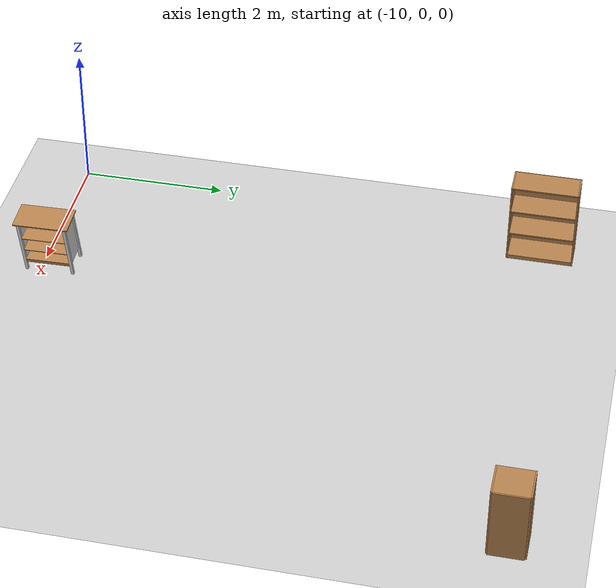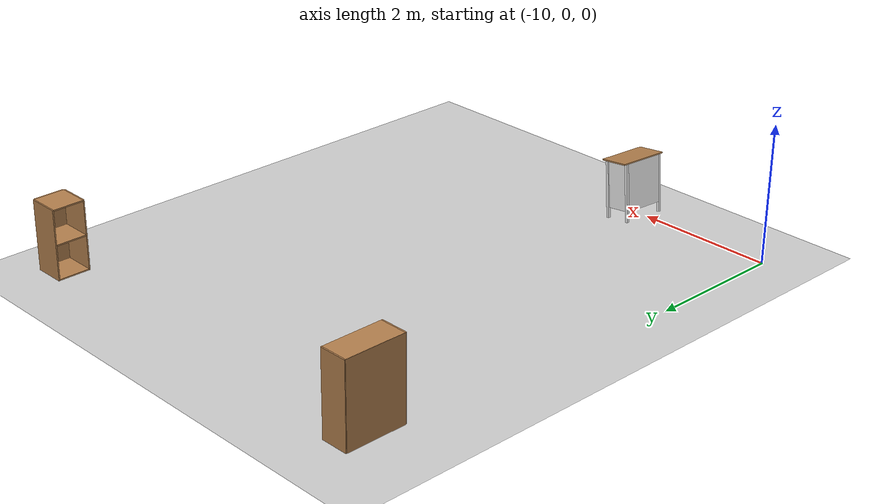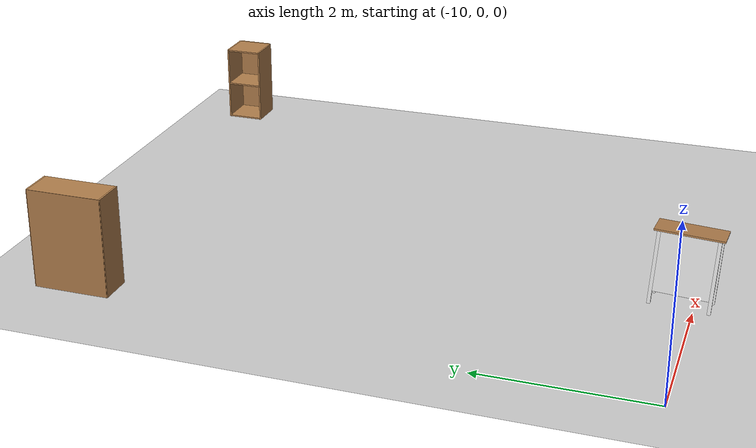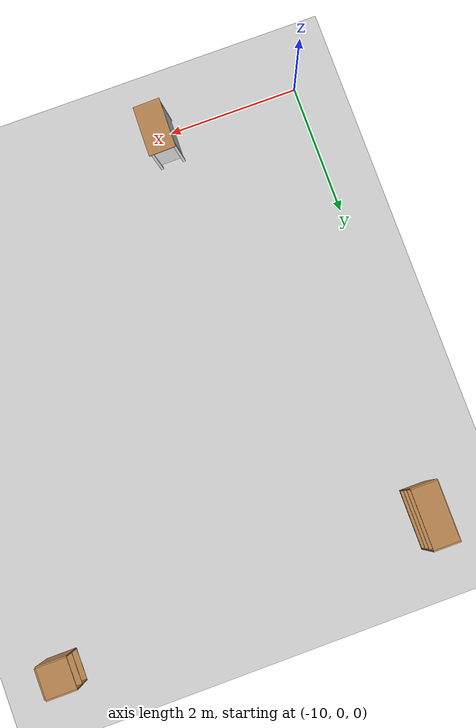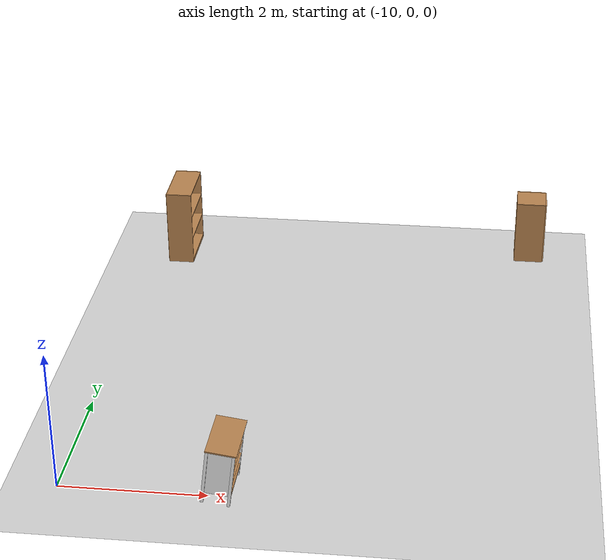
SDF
<sdf version="1.4">
 <world name="default">
  <light name="sun" type="directional">
   <pose>0 0 10 0 -0 0</pose>
   <diffuse>0.8 0.8 0.8 1</diffuse>
   <specular>0.2 0.2 0.2 1</specular>
   <attenuation>
    <range>1000</range>
    <constant>0.9</constant>
    <linear>0.01</linear>
    <quadratic>0.001</quadratic>
   </attenuation>
   <direction>-0.5 0.1 -0.9</direction>
  </light>
  <model name="ground_plane">
   <static>1</static>
   <link name="link">
    <collision name="collision">
     <geometry><plane><normal>0 0 1</normal><size>100 100</size></plane></geometry>
     <surface><friction><ode><mu>100</mu><mu2>50</mu2></ode></friction></surface>
    </collision>
    <visual name="visual">
     <cast_shadows>0</cast_shadows>
     <geometry><plane><normal>0 0 1</normal><size>100 100</size></plane></geometry>
     <material>
      <script><uri>file://media/materials/scripts/gazebo.material</uri><name>Gazebo/Grey</name></script>
     </material>
    </visual>
    <velocity_decay><linear>0</linear><angular>0</angular></velocity_decay>
   </link>
  </model>
  <physics type="ode">
   <max_step_size>0.001</max_step_size>
   <real_time_factor>1</real_time_factor>
   <real_time_update_rate>1000</real_time_update_rate>
   <gravity>0 0 -9.8</gravity>
  </physics>
  <scene><ambient>0.4 0.4 0.4 1</ambient><background>0.7 0.7 0.7 1</background><shadows>1</shadows></scene>
  <spherical_coordinates>
   <surface_model>EARTH_WGS84</surface_model>
   <latitude_deg>0</latitude_deg>
   <longitude_deg>0</longitude_deg>
   <elevation>0</elevation>
   <heading_deg>0</heading_deg>
  </spherical_coordinates>
  <model name="cabinet2">
   <link name="dummy_link">
    <inertial>
     <pose>0 0.02125 0.429167 0 -0 0</pose>
     <mass>60</mass>
     <inertia>
      <ixx>3.11074</ixx>
      <ixy>0</ixy>
      <ixz>0</ixz>
      <iyy>5.53421</iyy>
      <iyz>-0.0689375</iyz>
      <izz>3.98053</izz>
     </inertia>
    </inertial>
    <collision name="dummy_link_collision"><geometry><box><size>0 0 0</size></box></geometry></collision>
    <collision name="dummy_link_collision_cabinet_back">
     <pose>0 0.195 0.495 0 -0 0</pose>
     <geometry><box><size>0.62 0.02 0.69</size></box></geometry>
    </collision>
    <collision name="dummy_link_collision_cabinet_back_left">
     <pose>-0.33 0.185 0.42 0 -0 0</pose>
     <geometry><box><size>0.04 0.04 0.84</size></box></geometry>
    </collision>
    <collision name="dummy_link_collision_cabinet_back_right">
     <pose>0.33 0.185 0.42 0 -0 0</pose>
     <geometry><box><size>0.04 0.04 0.84</size></box></geometry>
    </collision>
    <collision name="dummy_link_collision_cabinet_bottom">
     <pose>0 0 0.175 0 -0 0</pose>
     <geometry><box><size>0.62 0.37 0.05</size></box></geometry>
    </collision>
    <collision name="dummy_link_collision_cabinet_front_left">
     <pose>-0.33 -0.165 0.42 0 -0 0</pose>
     <geometry><box><size>0.04 0.04 0.84</size></box></geometry>
    </collision>
    <collision name="dummy_link_collision_cabinet_front_right">
     <pose>0.33 -0.165 0.42 0 -0 0</pose>
     <geometry><box><size>0.04 0.04 0.84</size></box></geometry>
    </collision>
    <collision name="dummy_link_collision_cabinet_left">
     <pose>-0.32 0.01 0.495 0 -0 0</pose>
     <geometry><box><size>0.02 0.31 0.69</size></box></geometry>
    </collision>
    <collision name="dummy_link_collision_cabinet_middle1">
     <pose>0 0 0.585 0 -0 0</pose>
     <geometry><box><size>0.62 0.37 0.01</size></box></geometry>
    </collision>
    <collision name="dummy_link_collision_cabinet_middle2">
     <pose>0 0 0.375 0 -0 0</pose>
     <geometry><box><size>0.62 0.37 0.01</size></box></geometry>
    </collision>
    <collision name="dummy_link_collision_cabinet_right">
     <pose>0.32 0.01 0.495 0 -0 0</pose>
     <geometry><box><size>0.02 0.31 0.69</size></box></geometry>
    </collision>
    <collision name="dummy_link_collision_cabinet_top">
     <pose>0 0 0.85 0 -0 0</pose>
     <geometry><box><size>0.78 0.41 0.02</size></box></geometry>
    </collision>
    <visual name="dummy_link_visual"><geometry><box><size>0 0 0</size></box></geometry></visual>
    <visual name="dummy_link_visual_cabinet_back">
     <pose>0 0.195 0.495 0 -0 0</pose>
     <geometry><box><size>0.62 0.02 0.69</size></box></geometry>
     <material><script><name>IPA/Cabinet_White</name><uri>__default__</uri></script></material>
    </visual>
    <visual name="dummy_link_visual_cabinet_back_left">
     <pose>-0.33 0.185 0.42 0 -0 0</pose>
     <geometry><box><size>0.04 0.04 0.84</size></box></geometry>
     <material><script><name>IPA/Cabinet_White</name><uri>__default__</uri></script></material>
     <material><script><name>IPA/Cabinet_White</name><uri>__default__</uri></script></material>
    </visual>
    <visual name="dummy_link_visual_cabinet_back_right">
     <pose>0.33 0.185 0.42 0 -0 0</pose>
     <geometry><box><size>0.04 0.04 0.84</size></box></geometry>
     <material><script><name>IPA/Cabinet_White</name><uri>__default__</uri></script></material>
     <material><script><name>IPA/Cabinet_White</name><uri>__default__</uri></script></material>
    </visual>
    <visual name="dummy_link_visual_cabinet_bottom">
     <pose>0 0 0.175 0 -0 0</pose>
     <geometry><box><size>0.62 0.37 0.05</size></box></geometry>
     <material><script><name>IPA/Cabinet_Wood</name><uri>__default__</uri></script></material>
    </visual>
    <visual name="dummy_link_visual_cabinet_front_left">
     <pose>-0.33 -0.165 0.42 0 -0 0</pose>
     <geometry><box><size>0.04 0.04 0.84</size></box></geometry>
     <material><script><name>IPA/Cabinet_White</name><uri>__default__</uri></script></material>
    </visual>
    <visual name="dummy_link_visual_cabinet_front_right">
     <pose>0.33 -0.165 0.42 0 -0 0</pose>
     <geometry><box><size>0.04 0.04 0.84</size></box></geometry>
     <material><script><name>IPA/Cabinet_White</name><uri>__default__</uri></script></material>
    </visual>
    <visual name="dummy_link_visual_cabinet_left">
     <pose>-0.32 0.01 0.495 0 -0 0</pose>
     <geometry><box><size>0.02 0.31 0.69</size></box></geometry>
     <material><script><name>IPA/Cabinet_White</name><uri>__default__</uri></script></material>
    </visual>
    <visual name="dummy_link_visual_cabinet_middle1">
     <pose>0 0 0.585 0 -0 0</pose>
     <geometry><box><size>0.62 0.37 0.01</size></box></geometry>
     <material><script><name>IPA/Cabinet_Wood</name><uri>__default__</uri></script></material>
    </visual>
    <visual name="dummy_link_visual_cabinet_middle2">
     <pose>0 0 0.375 0 -0 0</pose>
     <geometry><box><size>0.62 0.37 0.01</size></box></geometry>
     <material><script><name>IPA/Cabinet_Wood</name><uri>__default__</uri></script></material>
    </visual>
    <visual name="dummy_link_visual_cabinet_right">
     <pose>0.32 0.01 0.495 0 -0 0</pose>
     <geometry><box><size>0.02 0.31 0.69</size></box></geometry>
     <material><script><name>IPA/Cabinet_White</name><uri>__default__</uri></script></material>
    </visual>
    <visual name="dummy_link_visual_cabinet_top">
     <pose>0 0 0.85 0 -0 0</pose>
     <geometry><box><size>0.78 0.41 0.02</size></box></geometry>
     <material><script><name>IPA/Cabinet_Wood</name><uri>__default__</uri></script></material>
    </visual>
    <velocity_decay><linear>0</linear><angular>0</angular></velocity_decay>
    <velocity_decay><linear>0</linear><angular>0</angular></velocity_decay>
    <velocity_decay><linear>0</linear><angular>0</angular></velocity_decay>
    <velocity_decay><linear>0</linear><angular>0</angular></velocity_decay>
    <velocity_decay><linear>0</linear><angular>0</angular></velocity_decay>
    <velocity_decay><linear>0</linear><angular>0</angular></velocity_decay>
    <velocity_decay><linear>0</linear><angular>0</angular></velocity_decay>
    <velocity_decay><linear>0</linear><angular>0</angular></velocity_decay>
    <velocity_decay><linear>0</linear><angular>0</angular></velocity_decay>
    <velocity_decay><linear>0</linear><angular>0</angular></velocity_decay>
    <velocity_decay><linear>0</linear><angular>0</angular></velocity_decay>
   </link>
   <pose>-7.8627 0.146233 0.038992 0.126868 -0.044608 1.54443</pose>
   <static>0</static>
  </model>
  <model name="bookshelf">
   <static>1</static>
   <link name="link">
    <inertial><mass>1</mass></inertial>
    <collision name="back">
     <pose>0 0.005 0.6 0 -0 0</pose>
     <geometry><box><size>0.9 0.01 1.2</size></box></geometry>
    </collision>
    <visual name="visual1">
     <pose>0 0.005 0.6 0 -0 0</pose>
     <geometry><box><size>0.9 0.01 1.2</size></box></geometry>
     <material>
      <script><uri>file://media/materials/scripts/gazebo.material</uri><name>Gazebo/Wood</name></script>
     </material>
    </visual>
    <collision name="left_side">
     <pose>0.45 -0.195 0.6 0 -0 0</pose>
     <geometry><box><size>0.02 0.4 1.2</size></box></geometry>
    </collision>
    <visual name="visual2">
     <pose>0.45 -0.195 0.6 0 -0 0</pose>
     <geometry><box><size>0.02 0.4 1.2</size></box></geometry>
     <material>
      <script><uri>file://media/materials/scripts/gazebo.material</uri><name>Gazebo/Wood</name></script>
     </material>
    </visual>
    <collision name="right_side">
     <pose>-0.45 -0.195 0.6 0 -0 0</pose>
     <geometry><box><size>0.02 0.4 1.2</size></box></geometry>
    </collision>
    <visual name="visual3">
     <pose>-0.45 -0.195 0.6 0 -0 0</pose>
     <geometry><box><size>0.02 0.4 1.2</size></box></geometry>
     <material>
      <script><uri>file://media/materials/scripts/gazebo.material</uri><name>Gazebo/Wood</name></script>
     </material>
    </visual>
    <collision name="bottom">
     <pose>0 -0.195 0.03 0 -0 0</pose>
     <geometry><box><size>0.88 0.4 0.06</size></box></geometry>
    </collision>
    <visual name="visual4">
     <pose>0 -0.195 0.03 0 -0 0</pose>
     <geometry><box><size>0.88 0.4 0.06</size></box></geometry>
     <material>
      <script><uri>file://media/materials/scripts/gazebo.material</uri><name>Gazebo/Wood</name></script>
     </material>
    </visual>
    <collision name="top">
     <pose>0 -0.195 1.19 0 -0 0</pose>
     <geometry><box><size>0.88 0.4 0.02</size></box></geometry>
    </collision>
    <visual name="visual5">
     <pose>0 -0.195 1.19 0 -0 0</pose>
     <geometry><box><size>0.88 0.4 0.02</size></box></geometry>
     <material>
      <script><uri>file://media/materials/scripts/gazebo.material</uri><name>Gazebo/Wood</name></script>
     </material>
    </visual>
    <collision name="low_shelf">
     <pose>0 -0.195 0.43 0 -0 0</pose>
     <geometry><box><size>0.88 0.4 0.02</size></box></geometry>
    </collision>
    <visual name="visual6">
     <pose>0 -0.195 0.43 0 -0 0</pose>
     <geometry><box><size>0.88 0.4 0.02</size></box></geometry>
     <material>
      <script><uri>file://media/materials/scripts/gazebo.material</uri><name>Gazebo/Wood</name></script>
     </material>
    </visual>
    <collision name="high_shelf">
     <pose>0 -0.195 0.8 0 -0 0</pose>
     <geometry><box><size>0.88 0.4 0.02</size></box></geometry>
    </collision>
    <visual name="visual7">
     <pose>0 -0.195 0.8 0 -0 0</pose>
     <geometry><box><size>0.88 0.4 0.02</size></box></geometry>
     <material>
      <script><uri>file://media/materials/scripts/gazebo.material</uri><name>Gazebo/Wood</name></script>
     </material>
    </visual>
    <velocity_decay><linear>0</linear><angular>0</angular></velocity_decay>
   </link>
   <pose>-9.72409 6.70725 0 0 -0 1.5708</pose>
  </model>
  <model name="cabinet">
   <static>1</static>
   <link name="cabinet_bottom_plate">
    <inertial>
     <pose>0 0 -1 0 -0 0</pose>
     <inertia><ixx>2.05</ixx><ixy>0</ixy><ixz>0</ixz><iyy>2.05</iyy><iyz>0</iyz><izz>2.05</izz></inertia>
     <mass>25</mass>
    </inertial>
    <collision name="cabinet_bottom_plate_geom">
     <pose>0 0 0.01 0 -0 0</pose>
     <geometry><box><size>0.45 0.45 0.02</size></box></geometry>
    </collision>
    <visual name="cabinet_bottom_plate_geom_visual">
     <pose>0 0 0.01 0 -0 0</pose>
     <geometry><box><size>0.45 0.45 0.02</size></box></geometry>
     <material>
      <script><uri>file://media/materials/scripts/gazebo.material</uri><name>Gazebo/Wood</name></script>
     </material>
    </visual>
    <collision name="cabinet_bottom_plate_geom_cabinet_back_plate">
     <pose>0.235 0 0.51 0 -0 0</pose>
     <geometry><box><size>0.02 0.45 1.02</size></box></geometry>
    </collision>
    <visual name="cabinet_bottom_plate_geom_cabinet_back_plate_visual">
     <pose>0.235 0 0.51 0 -0 0</pose>
     <geometry><box><size>0.02 0.45 1.02</size></box></geometry>
     <material>
      <script><uri>file://media/materials/scripts/gazebo.material</uri><name>Gazebo/Wood</name></script>
     </material>
    </visual>
    <collision name="cabinet_bottom_plate_geom_cabinet_left_plate">
     <pose>0 0.235 0.51 0 -0 0</pose>
     <geometry><box><size>0.45 0.02 1.02</size></box></geometry>
    </collision>
    <visual name="cabinet_bottom_plate_geom_cabinet_left_plate_visual">
     <pose>0 0.235 0.51 0 -0 0</pose>
     <geometry><box><size>0.45 0.02 1.02</size></box></geometry>
     <material>
      <script><uri>file://media/materials/scripts/gazebo.material</uri><name>Gazebo/Wood</name></script>
     </material>
    </visual>
    <collision name="cabinet_bottom_plate_geom_cabinet_middle_plate">
     <pose>0 0 0.51 0 -0 0</pose>
     <geometry><box><size>0.45 0.45 0.02</size></box></geometry>
    </collision>
    <visual name="cabinet_bottom_plate_geom_cabinet_middle_plate_visual">
     <pose>0 0 0.51 0 -0 0</pose>
     <geometry><box><size>0.45 0.45 0.02</size></box></geometry>
     <material>
      <script><uri>file://media/materials/scripts/gazebo.material</uri><name>Gazebo/Wood</name></script>
     </material>
    </visual>
    <collision name="cabinet_bottom_plate_geom_cabinet_right_plate">
     <pose>0 -0.235 0.51 0 -0 0</pose>
     <geometry><box><size>0.45 0.02 1.02</size></box></geometry>
    </collision>
    <visual name="cabinet_bottom_plate_geom_cabinet_right_plate_visual">
     <pose>0 -0.235 0.51 0 -0 0</pose>
     <geometry><box><size>0.45 0.02 1.02</size></box></geometry>
     <material>
      <script><uri>file://media/materials/scripts/gazebo.material</uri><name>Gazebo/Wood</name></script>
     </material>
    </visual>
    <collision name="cabinet_bottom_plate_geom_cabinet_top_plate">
     <pose>0 0 1.01 0 -0 0</pose>
     <geometry><box><size>0.45 0.45 0.02</size></box></geometry>
    </collision>
    <visual name="cabinet_bottom_plate_geom_cabinet_top_plate_visual">
     <pose>0 0 1.01 0 -0 0</pose>
     <geometry><box><size>0.45 0.45 0.02</size></box></geometry>
     <material>
      <script><uri>file://media/materials/scripts/gazebo.material</uri><name>Gazebo/Wood</name></script>
     </material>
    </visual>
    <velocity_decay><linear>0</linear><angular>0</angular></velocity_decay>
   </link>
   <pose>-3.90646 7 0.054352 0 -0 0</pose>
  </model>
 </world>
</sdf>
